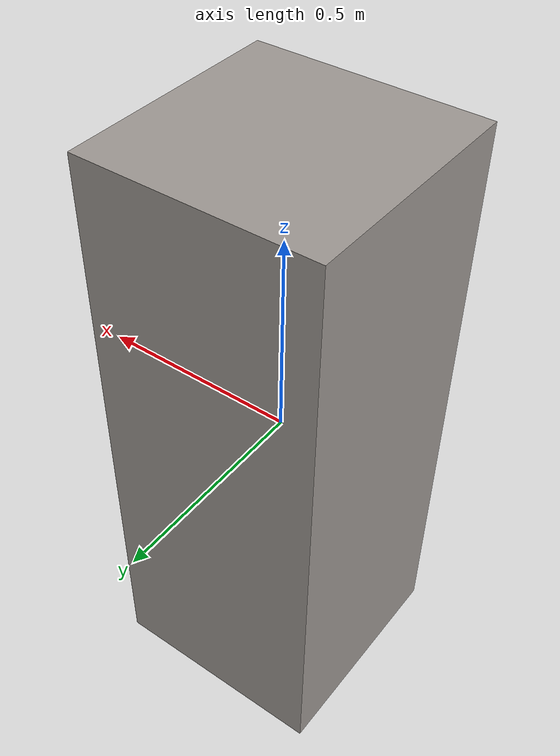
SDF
<?xml version="1.0"?>
<sdf version="1.6">
  <model name="CGMClassic">
    <static>true</static>
    <link name="link">
      <collision name="col">
        <geometry>
          <box>
            <size>0.55 0.55 1.45</size>
          </box>
        </geometry>
      </collision>
      <visual name="vis">
        <geometry>
          <box>
            <size>0.55 0.55 1.45</size>
          </box>
        </geometry>
        <material>
          <ambient>0.62 0.6 0.58 1</ambient>
          <diffuse>0.62 0.6 0.58 1</diffuse>
        </material>
      </visual>
    </link>
  </model>
</sdf>
